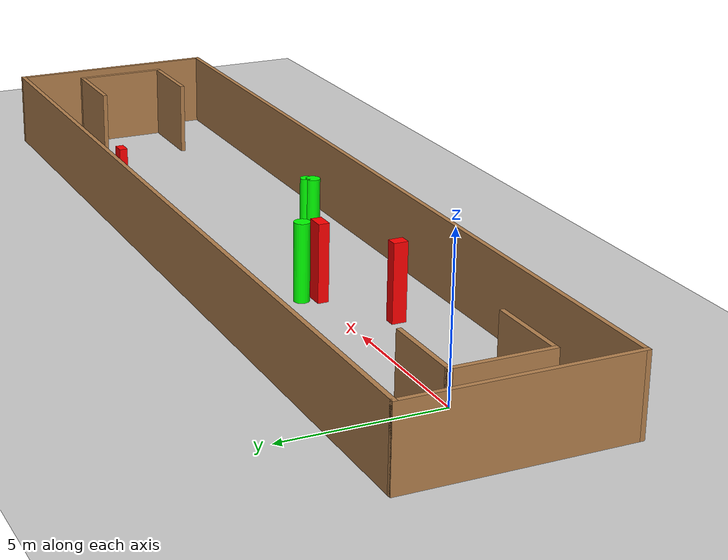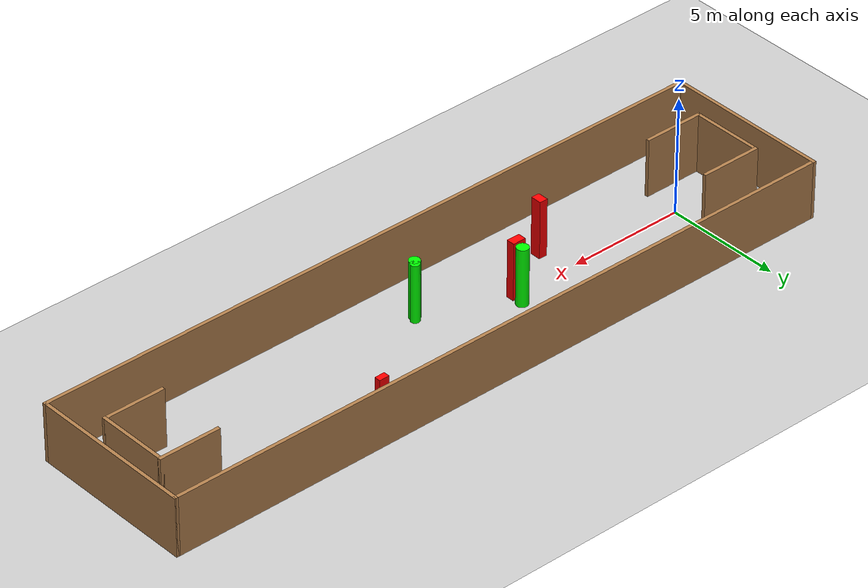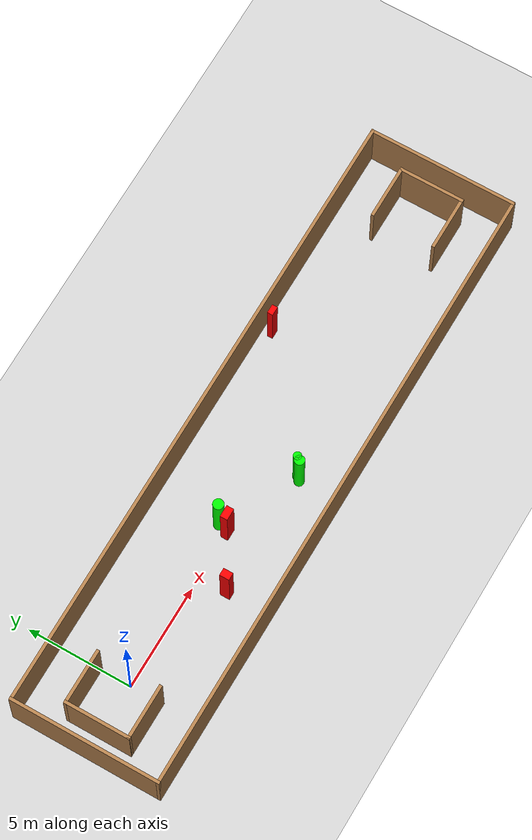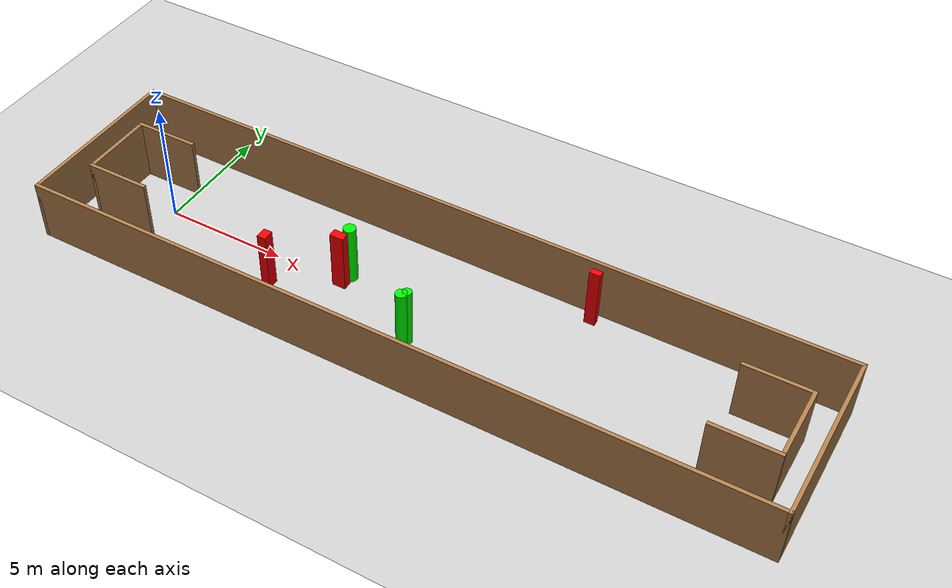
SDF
<sdf version="1.7">
 <world name="default">
  <light name="sun" type="directional">
   <pose>0 0 10 0 -0 0</pose>
   <diffuse>0.8 0.8 0.8 1</diffuse>
   <specular>0.2 0.2 0.2 1</specular>
   <attenuation>
    <range>1000</range>
    <constant>0.9</constant>
    <linear>0.01</linear>
    <quadratic>0.001</quadratic>
   </attenuation>
   <direction>-0.5 0.1 -0.9</direction>
   <spot><inner_angle>0</inner_angle><outer_angle>0</outer_angle><falloff>0</falloff></spot>
  </light>
  <model name="ground_plane">
   <static>1</static>
   <link name="link">
    <collision name="collision">
     <geometry><plane><normal>0 0 1</normal><size>100 100</size></plane></geometry>
     <surface>
      <contact><collide_bitmask>65535</collide_bitmask></contact>
      <friction><ode><mu>100</mu><mu2>50</mu2></ode></friction>
     </surface>
    </collision>
    <visual name="visual">
     <cast_shadows>0</cast_shadows>
     <geometry><plane><normal>0 0 1</normal><size>100 100</size></plane></geometry>
     <material>
      <script><uri>file://media/materials/scripts/gazebo.material</uri><name>Gazebo/Grey</name></script>
     </material>
    </visual>
   </link>
  </model>
  <gravity>0 0 -9.8</gravity>
  <magnetic_field>6e-06 2.3e-05 -4.2e-05</magnetic_field>
  <atmosphere type="adiabatic"/>
  <physics type="ode">
   <max_step_size>0.001</max_step_size>
   <real_time_factor>1</real_time_factor>
   <real_time_update_rate>1000</real_time_update_rate>
  </physics>
  <scene><ambient>0.4 0.4 0.4 1</ambient><background>0.7 0.7 0.7 1</background><shadows>1</shadows></scene>
  <spherical_coordinates>
   <surface_model>EARTH_WGS84</surface_model>
   <latitude_deg>0</latitude_deg>
   <longitude_deg>0</longitude_deg>
   <elevation>0</elevation>
   <heading_deg>0</heading_deg>
  </spherical_coordinates>
  <model name="my_base_walls">
   <link name="Wall_0">
    <collision name="Wall_0_Collision">
     <geometry><box><size>7.15 0.15 2.5</size></box></geometry>
     <pose>0 0 1.25 0 -0 0</pose>
    </collision>
    <visual name="Wall_0_Visual">
     <pose>0 0 1.25 0 -0 0</pose>
     <geometry><box><size>7.15 0.15 2.5</size></box></geometry>
     <material>
      <script><uri>file://media/materials/scripts/gazebo.material</uri><name>Gazebo/Wood</name></script>
      <ambient>1 1 1 1</ambient>
     </material>
     <meta><layer>0</layer></meta>
    </visual>
    <pose>-15 0 0 0 -0 1.5708</pose>
   </link>
   <link name="Wall_10">
    <collision name="Wall_10_Collision">
     <geometry><box><size>2.65 0.15 2.5</size></box></geometry>
     <pose>0 0 1.25 0 -0 0</pose>
    </collision>
    <visual name="Wall_10_Visual">
     <pose>0 0 1.25 0 -0 0</pose>
     <geometry><box><size>2.65 0.15 2.5</size></box></geometry>
     <material>
      <script><uri>file://media/materials/scripts/gazebo.material</uri><name>Gazebo/Wood</name></script>
      <ambient>1 1 1 1</ambient>
     </material>
     <meta><layer>0</layer></meta>
    </visual>
    <pose>-12.75 -1.5 0 0 -0 0</pose>
   </link>
   <link name="Wall_12">
    <collision name="Wall_12_Collision">
     <geometry><box><size>2.65 0.15 2.5</size></box></geometry>
     <pose>0 0 1.25 0 -0 0</pose>
    </collision>
    <visual name="Wall_12_Visual">
     <pose>0 0 1.25 0 -0 0</pose>
     <geometry><box><size>2.65 0.15 2.5</size></box></geometry>
     <material>
      <script><uri>file://media/materials/scripts/gazebo.material</uri><name>Gazebo/Wood</name></script>
      <ambient>1 1 1 1</ambient>
     </material>
     <meta><layer>0</layer></meta>
    </visual>
    <pose>-12.75 1.5 0 0 -0 0</pose>
   </link>
   <link name="Wall_14">
    <collision name="Wall_14_Collision">
     <geometry><box><size>3.15 0.15 2.5</size></box></geometry>
     <pose>0 0 1.25 0 -0 0</pose>
    </collision>
    <visual name="Wall_14_Visual">
     <pose>0 0 1.25 0 -0 0</pose>
     <geometry><box><size>3.15 0.15 2.5</size></box></geometry>
     <material>
      <script><uri>file://media/materials/scripts/gazebo.material</uri><name>Gazebo/Wood</name></script>
      <ambient>1 1 1 1</ambient>
     </material>
     <meta><layer>0</layer></meta>
    </visual>
    <pose>14 0 0 0 -0 -1.5708</pose>
   </link>
   <link name="Wall_15">
    <collision name="Wall_15_Collision">
     <geometry><box><size>2.65 0.15 2.5</size></box></geometry>
     <pose>0 0 1.25 0 -0 0</pose>
    </collision>
    <visual name="Wall_15_Visual">
     <pose>0 0 1.25 0 -0 0</pose>
     <geometry><box><size>2.65 0.15 2.5</size></box></geometry>
     <material>
      <script><uri>file://media/materials/scripts/gazebo.material</uri><name>Gazebo/Wood</name></script>
      <ambient>1 1 1 1</ambient>
     </material>
     <meta><layer>0</layer></meta>
    </visual>
    <pose>12.75 -1.5 0 0 -0 3.14159</pose>
   </link>
   <link name="Wall_17">
    <collision name="Wall_17_Collision">
     <geometry><box><size>2.65 0.15 2.5</size></box></geometry>
     <pose>0 0 1.25 0 -0 0</pose>
    </collision>
    <visual name="Wall_17_Visual">
     <pose>0 0 1.25 0 -0 0</pose>
     <geometry><box><size>2.65 0.15 2.5</size></box></geometry>
     <material>
      <script><uri>file://media/materials/scripts/gazebo.material</uri><name>Gazebo/Wood</name></script>
      <ambient>1 1 1 1</ambient>
     </material>
     <meta><layer>0</layer></meta>
    </visual>
    <pose>12.75 1.5 0 0 -0 3.14159</pose>
   </link>
   <link name="Wall_2">
    <collision name="Wall_2_Collision">
     <geometry><box><size>30.15 0.15 2.5</size></box></geometry>
     <pose>0 0 1.25 0 -0 0</pose>
    </collision>
    <visual name="Wall_2_Visual">
     <pose>0 0 1.25 0 -0 0</pose>
     <geometry><box><size>30.15 0.15 2.5</size></box></geometry>
     <material>
      <script><uri>file://media/materials/scripts/gazebo.material</uri><name>Gazebo/Wood</name></script>
      <ambient>1 1 1 1</ambient>
     </material>
     <meta><layer>0</layer></meta>
    </visual>
    <pose>-0 -3.5 0 0 -0 0</pose>
   </link>
   <link name="Wall_4">
    <collision name="Wall_4_Collision">
     <geometry><box><size>30.15 0.15 2.5</size></box></geometry>
     <pose>0 0 1.25 0 -0 0</pose>
    </collision>
    <visual name="Wall_4_Visual">
     <pose>0 0 1.25 0 -0 0</pose>
     <geometry><box><size>30.15 0.15 2.5</size></box></geometry>
     <material>
      <script><uri>file://media/materials/scripts/gazebo.material</uri><name>Gazebo/Wood</name></script>
      <ambient>1 1 1 1</ambient>
     </material>
     <meta><layer>0</layer></meta>
    </visual>
    <pose>-0 3.5 0 0 -0 0</pose>
   </link>
   <link name="Wall_6">
    <collision name="Wall_6_Collision">
     <geometry><box><size>7.15 0.15 2.5</size></box></geometry>
     <pose>0 0 1.25 0 -0 0</pose>
    </collision>
    <visual name="Wall_6_Visual">
     <pose>0 0 1.25 0 -0 0</pose>
     <geometry><box><size>7.15 0.15 2.5</size></box></geometry>
     <material>
      <script><uri>file://media/materials/scripts/gazebo.material</uri><name>Gazebo/Wood</name></script>
      <ambient>1 1 1 1</ambient>
     </material>
     <meta><layer>0</layer></meta>
    </visual>
    <pose>15 0 0 0 -0 -1.5708</pose>
   </link>
   <link name="Wall_9">
    <collision name="Wall_9_Collision">
     <geometry><box><size>3.15 0.15 2.5</size></box></geometry>
     <pose>0 0 1.25 0 -0 0</pose>
    </collision>
    <visual name="Wall_9_Visual">
     <pose>0 0 1.25 0 -0 0</pose>
     <geometry><box><size>3.15 0.15 2.5</size></box></geometry>
     <material>
      <script><uri>file://media/materials/scripts/gazebo.material</uri><name>Gazebo/Wood</name></script>
      <ambient>1 1 1 1</ambient>
     </material>
     <meta><layer>0</layer></meta>
    </visual>
    <pose>-14 0 0 0 -0 -1.5708</pose>
   </link>
   <static>1</static>
   <pose>11.5 0 0 0 -0 0</pose>
  </model>
  <model name="cylinder1">
   <static>1</static>
   <link name="link">
    <inertial>
     <mass>1</mass>
     <inertia><ixx>0.5</ixx><ixy>0</ixy><ixz>0</ixz><iyy>0.5</iyy><iyz>0</iyz><izz>1</izz></inertia>
    </inertial>
    <collision name="collision">
     <geometry><cylinder><radius>0.23228292978219123</radius><length>2.5</length></cylinder></geometry>
    </collision>
    <visual name="visual">
     <geometry><cylinder><radius>0.23228292978219123</radius><length>2.5</length></cylinder></geometry>
     <material>
      <ambient>0 1 0 1</ambient>
      <diffuse>0 1 0 1</diffuse>
      <specular>0.1 0.1 0.1 1</specular>
      <emissive>0 0 0 0</emissive>
     </material>
    </visual>
   </link>
   <pose>11.471479511757309 -1.4661217390276606 1.25 0 0 0</pose>
  </model>
  <model name="cylinder2">
   <static>1</static>
   <link name="link">
    <inertial>
     <mass>1</mass>
     <inertia><ixx>0.5</ixx><ixy>0</ixy><ixz>0</ixz><iyy>0.5</iyy><iyz>0</iyz><izz>1</izz></inertia>
    </inertial>
    <collision name="collision">
     <geometry><cylinder><radius>0.1898870314912452</radius><length>2.5</length></cylinder></geometry>
    </collision>
    <visual name="visual">
     <geometry><cylinder><radius>0.1898870314912452</radius><length>2.5</length></cylinder></geometry>
     <material>
      <ambient>0 1 0 1</ambient>
      <diffuse>0 1 0 1</diffuse>
      <specular>0.1 0.1 0.1 1</specular>
      <emissive>0 0 0 0</emissive>
     </material>
    </visual>
   </link>
   <pose>11.599813358322649 -1.2900975863316786 1.25 0 0 0</pose>
  </model>
  <model name="cylinder3">
   <static>1</static>
   <link name="link">
    <inertial>
     <mass>1</mass>
     <inertia><ixx>0.5</ixx><ixy>0</ixy><ixz>0</ixz><iyy>0.5</iyy><iyz>0</iyz><izz>1</izz></inertia>
    </inertial>
    <collision name="collision">
     <geometry><cylinder><radius>0.2509759102907485</radius><length>2.5</length></cylinder></geometry>
    </collision>
    <visual name="visual">
     <geometry><cylinder><radius>0.2509759102907485</radius><length>2.5</length></cylinder></geometry>
     <material>
      <ambient>0 1 0 1</ambient>
      <diffuse>0 1 0 1</diffuse>
      <specular>0.1 0.1 0.1 1</specular>
      <emissive>0 0 0 0</emissive>
     </material>
    </visual>
   </link>
   <pose>8.055047857723359 0.48507910973842083 1.25 0 0 0</pose>
  </model>
  <model name="box1">
   <static>1</static>
   <link name="link">
    <inertial>
     <mass>1</mass>
     <inertia><ixx>0.083</ixx><ixy>0</ixy><ixz>0</ixz><iyy>0.083</iyy><iyz>0</iyz><izz>0.083</izz></inertia>
    </inertial>
    <collision name="collision">
     <geometry><box><size>0.355634886900842 0.4584443485519905 2.5</size></box></geometry>
    </collision>
    <visual name="visual">
     <geometry><box><size>0.355634886900842 0.4584443485519905 2.5</size></box></geometry>
     <material>
      <ambient>1 0 0 1</ambient>
      <diffuse>1 0 0 1</diffuse>
      <specular>0.1 0.1 0.1 1</specular>
      <emissive>0 0 0 0</emissive>
     </material>
    </visual>
    <sensor name="my_contact" type="contact">
     <contact><collision>box_collision</collision><topic>__default_topic__</topic></contact>
    </sensor>
   </link>
   <pose>5.550308648353793 -1.3748094987344066 1.25 0 0 0</pose>
  </model>
  <model name="box2">
   <static>1</static>
   <link name="link">
    <inertial>
     <mass>1</mass>
     <inertia><ixx>0.083</ixx><ixy>0</ixy><ixz>0</ixz><iyy>0.083</iyy><iyz>0</iyz><izz>0.083</izz></inertia>
    </inertial>
    <collision name="collision">
     <geometry><box><size>0.43253455322878187 0.2609243487808391 2.5</size></box></geometry>
    </collision>
    <visual name="visual">
     <geometry><box><size>0.43253455322878187 0.2609243487808391 2.5</size></box></geometry>
     <material>
      <ambient>1 0 0 1</ambient>
      <diffuse>1 0 0 1</diffuse>
      <specular>0.1 0.1 0.1 1</specular>
      <emissive>0 0 0 0</emissive>
     </material>
    </visual>
    <sensor name="my_contact" type="contact">
     <contact><collision>box_collision</collision><topic>__default_topic__</topic></contact>
    </sensor>
   </link>
   <pose>16.874684709293284 2.9876467068957826 1.25 0 0 0</pose>
  </model>
  <model name="box3">
   <static>1</static>
   <link name="link">
    <inertial>
     <mass>1</mass>
     <inertia><ixx>0.083</ixx><ixy>0</ixy><ixz>0</ixz><iyy>0.083</iyy><iyz>0</iyz><izz>0.083</izz></inertia>
    </inertial>
    <collision name="collision">
     <geometry><box><size>0.5623242322628987 0.3493115068619064 2.5</size></box></geometry>
    </collision>
    <visual name="visual">
     <geometry><box><size>0.5623242322628987 0.3493115068619064 2.5</size></box></geometry>
     <material>
      <ambient>1 0 0 1</ambient>
      <diffuse>1 0 0 1</diffuse>
      <specular>0.1 0.1 0.1 1</specular>
      <emissive>0 0 0 0</emissive>
     </material>
    </visual>
    <sensor name="my_contact" type="contact">
     <contact><collision>box_collision</collision><topic>__default_topic__</topic></contact>
    </sensor>
   </link>
   <pose>7.903798569062703 -0.023181542535323896 1.25 0 0 0</pose>
  </model>
 </world>
</sdf>
